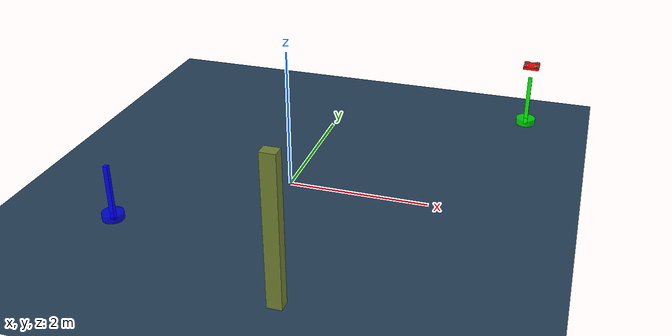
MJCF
<mujoco model="complex_uav_env">
  <compiler angle="degree" coordinate="local" inertiafromgeom="true"/>
  <option integrator="RK4" timestep="0.01"/>

  <visual>
    <headlight diffuse="0.6 0.6 0.6" ambient="0.3 0.3 0.3"/>
    <rgba haze="0.15 0.25 0.35 1"/>
    <global offwidth="2560" offheight="1440"/>
  </visual>

  <asset>
    <texture type="skybox" builtin="gradient" rgb1="0.3 0.5 0.7" rgb2="0 0 0" width="512" height="3072"/>
    <texture name="grid" type="2d" builtin="checker" rgb1="0.1 0.2 0.3" rgb2="0.2 0.3 0.4" width="512" height="512"/>
    <material name="grid" texture="grid" texrepeat="1 1" reflectance="0.2"/>
  </asset>

  <worldbody>
    <!-- Ground plane -->
    <geom name="ground" type="plane" size="4.0 4.0 0.1" material="grid"/>
    <light name="light1" pos="0 0 4" dir="0 0 -1" diffuse="1 1 1"/>

    <!-- Start position marker (green) -->
    <geom name="start_marker" type="cylinder" size="0.15 0.05" pos="3.0 3.0 0.05" rgba="0 1 0 0.8"/>
    <geom name="start_pole" type="box" size="0.03 0.03 0.4" pos="3.0 3.0 0.4" rgba="0 1 0 1"/>

    <!-- Goal position marker (blue) -->
    <geom name="goal_marker" type="cylinder" size="0.15 0.05" pos="-1.9353573382260045 -1.5801274611621847 0.05" rgba="0 0 1 0.8"/>
    <geom name="goal_pole" type="box" size="0.03 0.03 0.4" pos="-1.9353573382260045 -1.5801274611621847 0.4" rgba="0 0 1 1"/>

    <!-- UAV starting position -->
    <body name="chassis" pos="3.0 3.0 1.0">
      <joint type="free" name="root"/>
      <geom type="box" size="0.12 0.12 0.02" rgba="1.0 0.0 0.0 1.0" mass="0.8"/>

      <!-- Propeller arms and motors -->
      <geom type="box" size="0.08 0.01 0.005" pos="0 0 0.01" rgba="0.3 0.3 0.3 1"/>
      <geom type="box" size="0.01 0.08 0.005" pos="0 0 0.01" rgba="0.3 0.3 0.3 1"/>

      <!-- Motor visual geometry -->
      <geom type="cylinder" size="0.015 0.02" pos="0.08 0.08 0.015" rgba="0.2 0.2 0.2 1"/>
      <geom type="cylinder" size="0.015 0.02" pos="-0.08 0.08 0.015" rgba="0.2 0.2 0.2 1"/>
      <geom type="cylinder" size="0.015 0.02" pos="0.08 -0.08 0.015" rgba="0.2 0.2 0.2 1"/>
      <geom type="cylinder" size="0.015 0.02" pos="-0.08 -0.08 0.015" rgba="0.2 0.2 0.2 1"/>

      <!-- Propellers -->
      <geom type="cylinder" size="0.04 0.002" pos="0.08 0.08 0.035" rgba="0.7 0.7 0.7 0.8"/>
      <geom type="cylinder" size="0.04 0.002" pos="-0.08 0.08 0.035" rgba="0.7 0.7 0.7 0.8"/>
      <geom type="cylinder" size="0.04 0.002" pos="0.08 -0.08 0.035" rgba="0.7 0.7 0.7 0.8"/>
      <geom type="cylinder" size="0.04 0.002" pos="-0.08 -0.08 0.035" rgba="0.7 0.7 0.7 0.8"/>

      <!-- Sites for motor force application -->
      <site name="motor1" pos="0.08 0.08 0" size="0.01"/>
      <site name="motor2" pos="-0.08 0.08 0" size="0.01"/>
      <site name="motor3" pos="0.08 -0.08 0" size="0.01"/>
      <site name="motor4" pos="-0.08 -0.08 0" size="0.01"/>
    </body>
    <geom name="test_obs_0" type="box" size="0.09648613662267058 0.07806278915681564 1.0" pos="0.8114023315215635 -2.6515223034390845 1.0" rgba="0.44255702012090337 0.5088855961197206 0.18868555685772315 1.0"/>
  </worldbody>

  <actuator>
    <motor name="m1" gear="0 0 1 0 0 0" site="motor1"/>
    <motor name="m2" gear="0 0 1 0 0 0" site="motor2"/>
    <motor name="m3" gear="0 0 1 0 0 0" site="motor3"/>
    <motor name="m4" gear="0 0 1 0 0 0" site="motor4"/>
  </actuator>
</mujoco>
